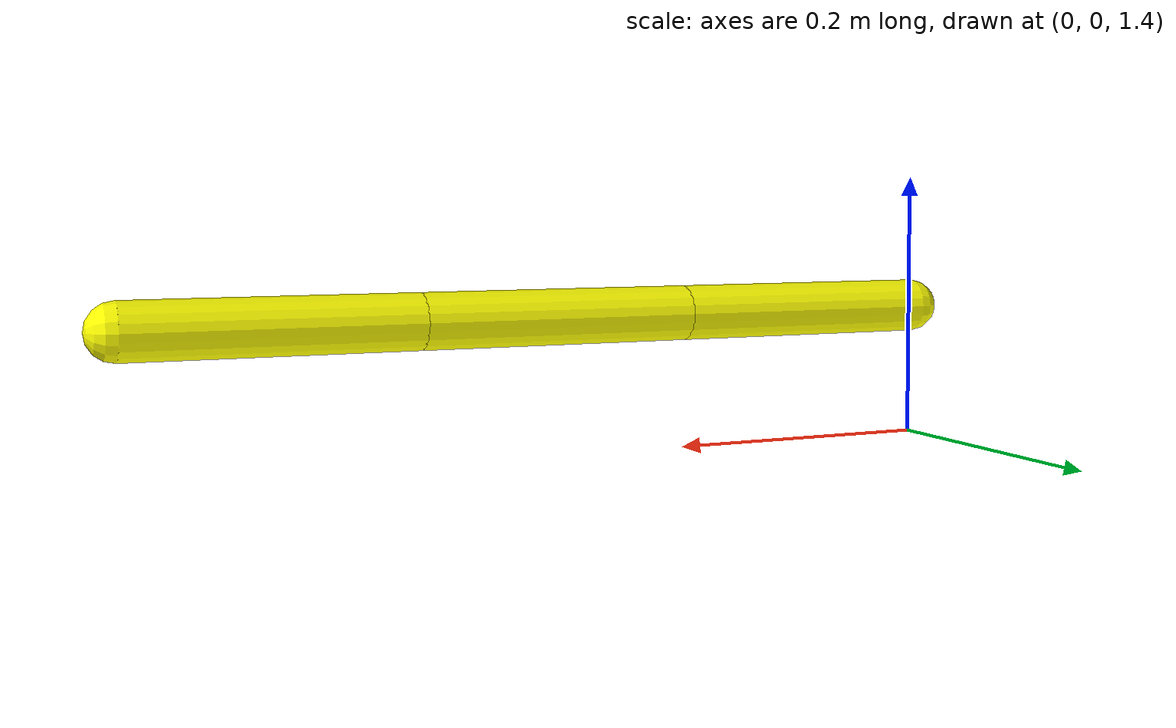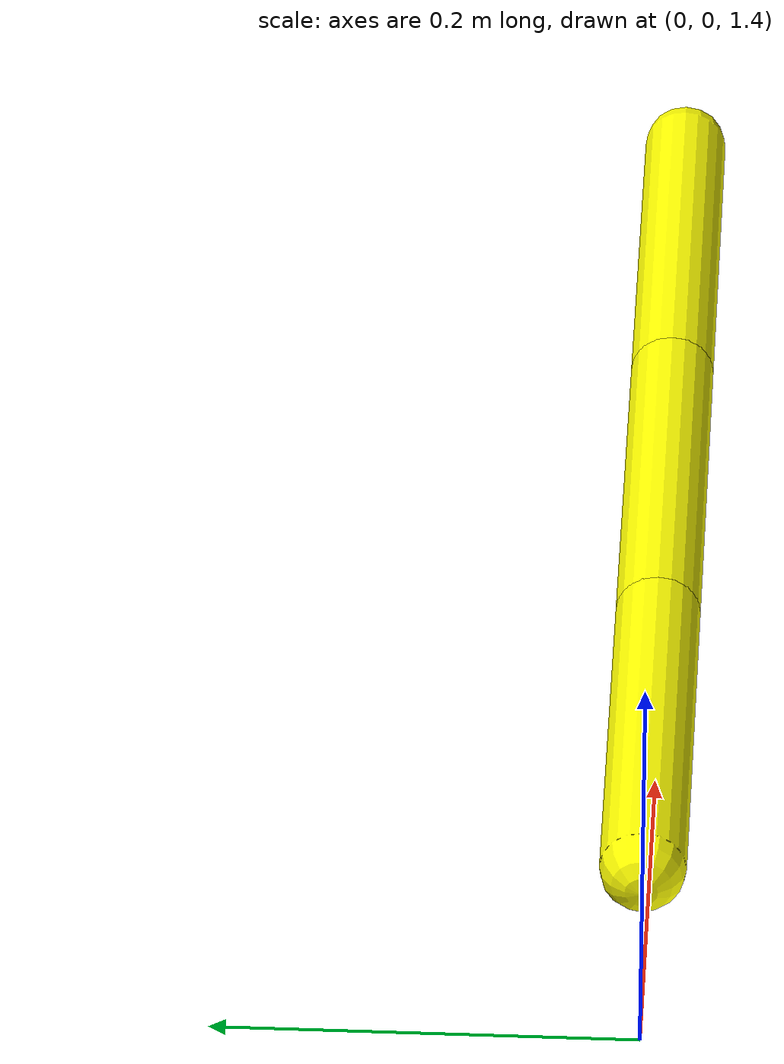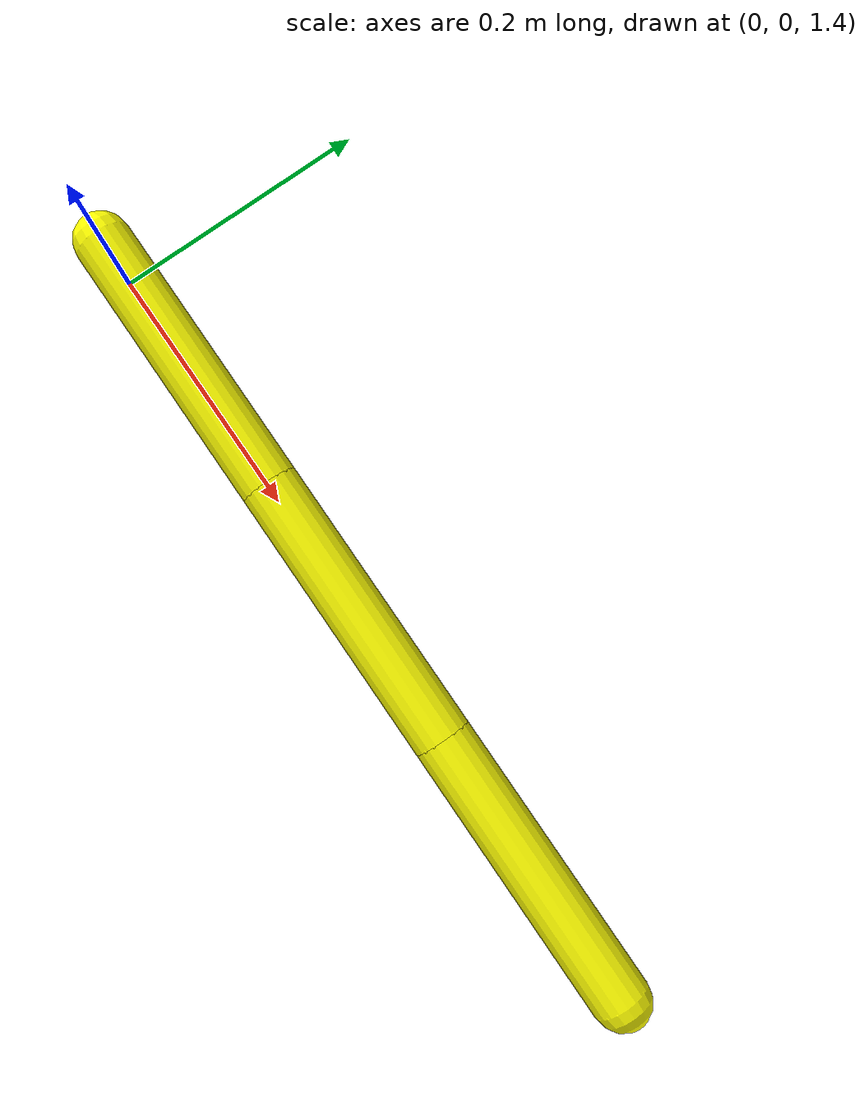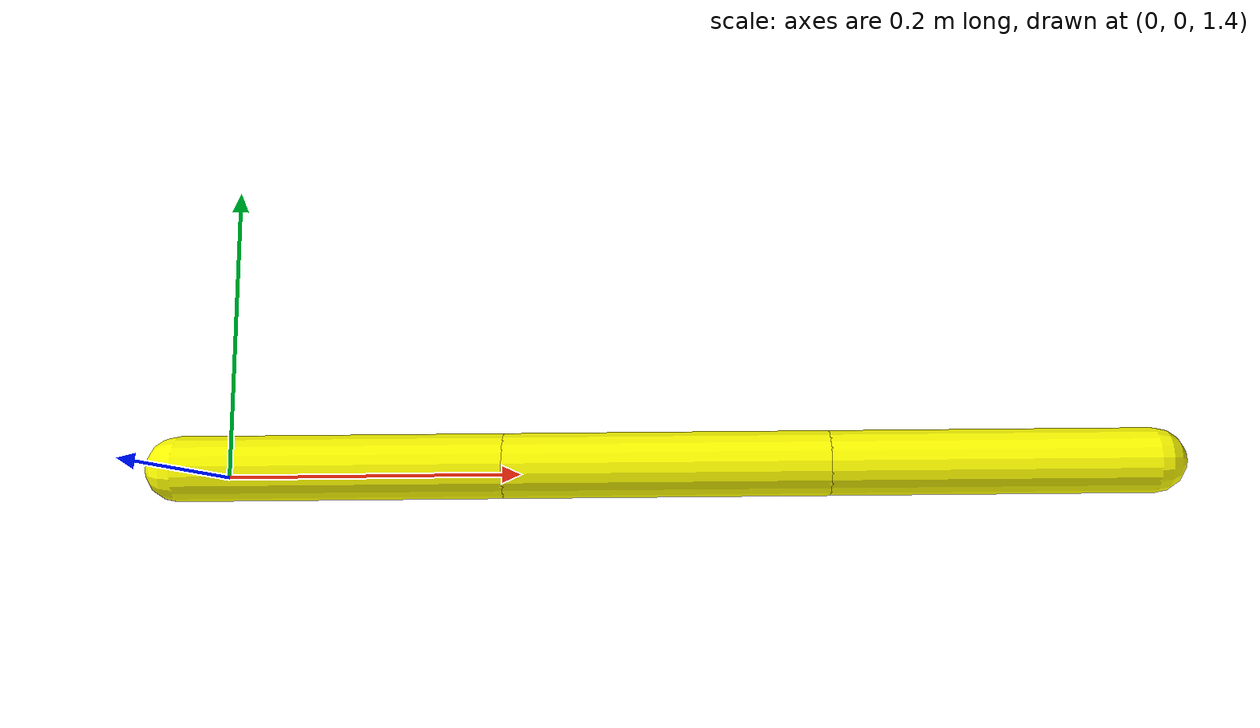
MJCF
<mujoco model="kinematic_chain_actuator_in_xml">
  <compiler inertiafromgeom="true"/>
  <option integrator="RK4" timestep="0.002" gravity="0 0 0"/>

  <visual>
    <headlight ambient="0.3 0.3 0.3" diffuse="0.6 0.6 0.6" specular="0.1 0.1 0.1"/>
    <map znear="0.01"/>
  </visual>

  <worldbody>
    <geom name="ground" type="plane" size="5 5 0.1" rgba="0.2 0.3 0.2 1"/>
    <light diffuse="1 1 1" pos="0 0 3" dir="0 0 -1"/>

    <site name="anchor" pos="0 0 1.5"/>

    <!-- Kinematic chain of 5 links -->
    <body name="link1" pos="0 0 1.5">
      <joint type="ball" name="j1"/>
      <geom type="capsule" fromto="0 0 0 0.2 0 0" size="0.02" mass="0.05" rgba="1 1 0 1"/>

      <body name="link2" pos="0.2 0 0">
        <joint type="ball" name="j2"/>
        <geom type="capsule" fromto="0 0 0 0.2 0 0" size="0.02" mass="0.05" rgba="1 1 0 1"/>

        <body name="link3" pos="0.2 0 0">
          <joint type="ball" name="actuator_joint"/>
          <geom type="capsule" fromto="0 0 0 0.2 0 0" size="0.02" mass="0.05" rgba="1 1 0 1"/>

          </body>
        </body>
    </body>
  </worldbody>

  <actuator>
    <!-- The motor is attached to the slide joint of the invisible slider -->
    <motor name="pull_motor" joint="actuator_joint" gear="1" ctrlrange="-100 100"/>
  </actuator>

  <sensor>
    <actuatorfrc name="force_sensor" actuator="pull_motor"/>
  </sensor>
</mujoco>
